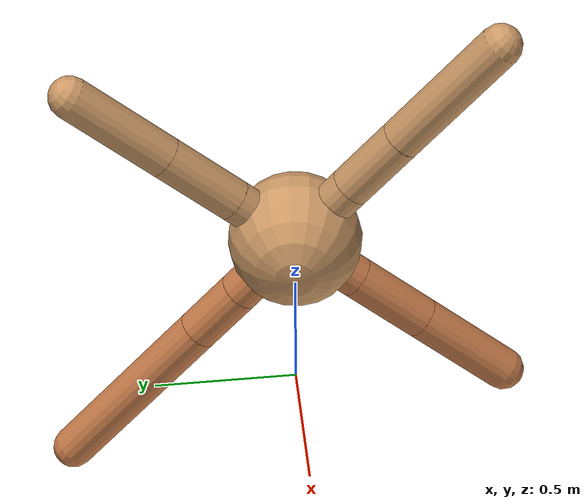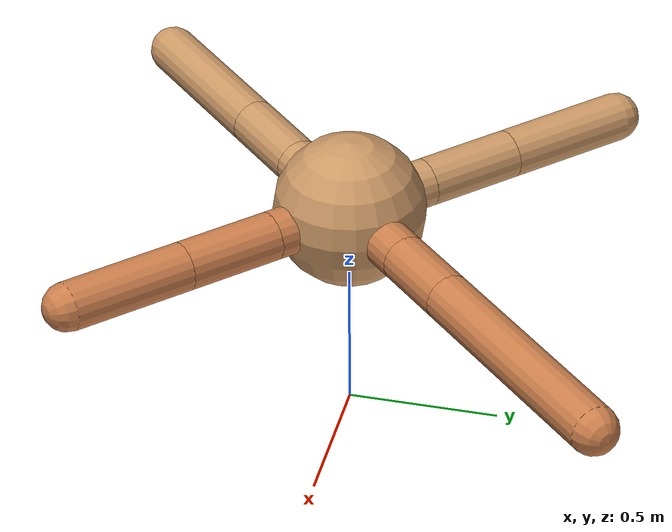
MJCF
<mujoco model="ant">
  <compiler angle="degree" coordinate="local" inertiafromgeom="true" />
  <option integrator="RK4" timestep="0.01" />
  <custom>
    <numeric data="0.0 0.0 0.55 1.0 0.0 0.0 0.0 0.0 1.0 0.0 -1.0 0.0 -1.0 0.0 1.0" name="init_qpos" />
  </custom>
  <default>
    <joint armature="1" damping="1" limited="true" />
    <geom conaffinity="0" condim="3" density="5.0" friction="1.5 0.1 0.1" margin="0.01" rgba="0.8 0.6 0.4 1" />
  </default>
  <worldbody>
    <body name="torso" pos="0 0 0.75">
      <geom name="torso_geom" pos="0 0 0" size="0.25" type="sphere" />

      <body name="front_left_leg" pos="0 0 0">
        <geom fromto="0.0 0.0 0.0 0.23421374965643801 0.23421374965643801 0.0" name="aux_1_geom" size="0.08" type="capsule" rgba=".8 .5 .3 1" />
        <body name="aux_1" pos="0.23421374965643801 0.23421374965643801 0.0">
          <joint axis="0 0 1" name="hip_1" pos="0.0 0.0 0.0" range="-40 40" type="hinge" />
          <geom fromto="0.0 0.0 0.0 0.17532010449205676 0.17532010449205676 0.0" name="left_leg_geom" size="0.08" type="capsule" rgba=".8 .5 .3 1" />
          <body pos="0.17532010449205676 0.17532010449205676 0.0" name="front_left_foot">
            <joint axis="-1 1 0" name="ankle_1" pos="0.0 0.0 0.0" range="30 100" type="hinge" />
            <geom fromto="0.0 0.0 0.0 0.555694110891994 0.555694110891994 0.0" name="left_ankle_geom" size="0.08" type="capsule" rgba=".8 .5 .3 1" />
          </body>
        </body>
      </body>
      <body name="front_right_leg" pos="0 0 0">
        <geom fromto="0.0 0.0 0.0 -0.20525357138561762 0.20525357138561762 0.0" name="aux_2_geom" size="0.08" type="capsule" />
        <body name="aux_2" pos="-0.20525357138561762 0.20525357138561762 0.0">
          <joint axis="0 0 1" name="hip_2" pos="0.0 0.0 0.0" range="-40 40" type="hinge" />
          <geom fromto="0.0 0.0 0.0 -0.22664279650561953 0.22664279650561953 0.0" name="right_leg_geom" size="0.08" type="capsule" />
          <body pos="-0.22664279650561953 0.22664279650561953 0.0" name="front_right_foot">
            <joint axis="1 1 0" name="ankle_2" pos="0.0 0.0 0.0" range="-100 -30" type="hinge" />
            <geom fromto="0.0 0.0 0.0 -0.3047075893752582 0.3047075893752582 0.0" name="right_ankle_geom" size="0.08" type="capsule" />
          </body>
        </body>
      </body>
      <body name="left_back_leg" pos="0 0 0">
        <geom fromto="0.0 0.0 0.0 -0.22509431046745224 -0.22509431046745224 0.0" name="aux_3_geom" size="0.08" type="capsule" />
        <body name="aux_3" pos="-0.22509431046745224 -0.22509431046745224 0.0">
          <joint axis="0 0 1" name="hip_3" pos="0.0 0.0 0.0" range="-40 40" type="hinge" />
          <geom fromto="0.0 0.0 0.0 -0.19969416313258528 -0.19969416313258528 0.0" name="back_leg_geom" size="0.08" type="capsule" />
          <body pos="-0.19969416313258528 -0.19969416313258528 0.0" name="left_back_foot">
            <joint axis="-1 1 0" name="ankle_3" pos="0.0 0.0 0.0" range="-100 -30" type="hinge" />
            <geom fromto="0.0 0.0 0.0 -0.38508149104876976 -0.38508149104876976 0.0" name="third_ankle_geom" size="0.08" type="capsule" />
          </body>
        </body>
      </body>
      <body name="right_back_leg" pos="0 0 0">
        <geom fromto="0.0 0.0 0.0 0.20724696228780257 -0.20724696228780257 0.0" name="aux_4_geom" size="0.08" type="capsule" rgba=".8 .5 .3 1" />
        <body name="aux_4" pos="0.20724696228780257 -0.20724696228780257 0.0">
          <joint axis="0 0 1" name="hip_4" pos="0.0 0.0 0.0" range="-40 40" type="hinge" />
          <geom fromto="0.0 0.0 0.0 0.22642883180252166 -0.22642883180252166 0.0" name="rightback_leg_geom" size="0.08" type="capsule" rgba=".8 .5 .3 1" />
          <body pos="0.22642883180252166 -0.22642883180252166 0.0" name="right_back_foot">
            <joint axis="1 1 0" name="ankle_4" pos="0.0 0.0 0.0" range="30 100" type="hinge" />
            <geom fromto="0.0 0.0 0.0 0.29195262974595604 -0.29195262974595604 0.0" name="fourth_ankle_geom" size="0.08" type="capsule" rgba=".8 .5 .3 1" />
          </body>
        </body>
      </body>
    </body>
  </worldbody>
  <actuator>
    <motor ctrllimited="true" ctrlrange="-1.0 1.0" joint="hip_4" gear="150" />
    <motor ctrllimited="true" ctrlrange="-1.0 1.0" joint="ankle_4" gear="150" />
    <motor ctrllimited="true" ctrlrange="-1.0 1.0" joint="hip_1" gear="150" />
    <motor ctrllimited="true" ctrlrange="-1.0 1.0" joint="ankle_1" gear="150" />
    <motor ctrllimited="true" ctrlrange="-1.0 1.0" joint="hip_2" gear="150" />
    <motor ctrllimited="true" ctrlrange="-1.0 1.0" joint="ankle_2" gear="150" />
    <motor ctrllimited="true" ctrlrange="-1.0 1.0" joint="hip_3" gear="150" />
    <motor ctrllimited="true" ctrlrange="-1.0 1.0" joint="ankle_3" gear="150" />
  </actuator>
</mujoco>
